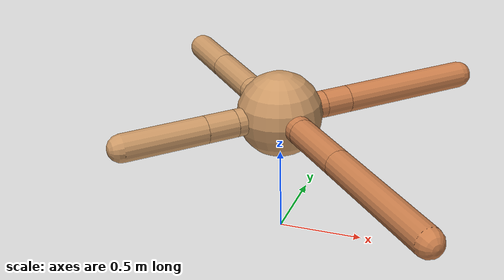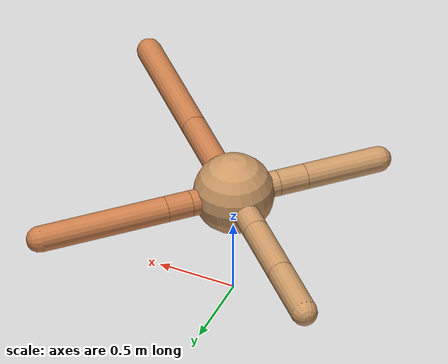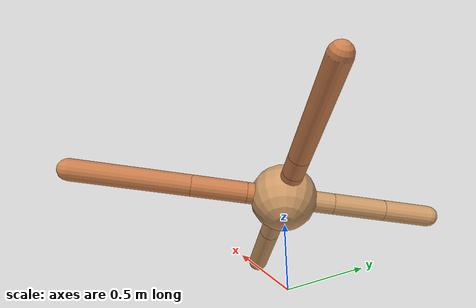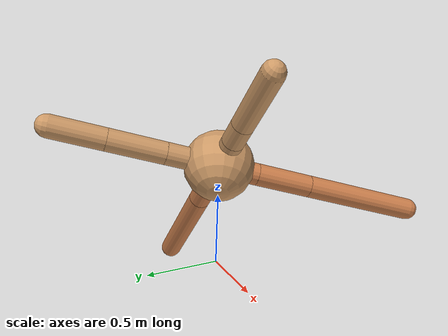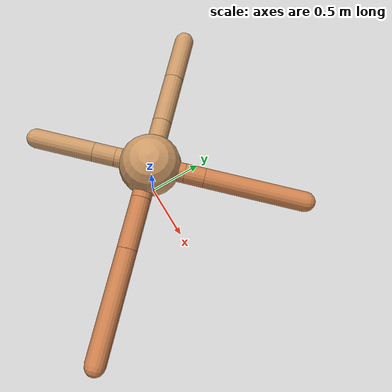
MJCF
<mujoco model="ant">
  <compiler angle="degree" coordinate="local" inertiafromgeom="true" />
  <option integrator="RK4" timestep="0.01" />
  <custom>
    <numeric data="0.0 0.0 0.55 1.0 0.0 0.0 0.0 0.0 1.0 0.0 -1.0 0.0 -1.0 0.0 1.0" name="init_qpos" />
  </custom>
  <default>
    <joint armature="1" damping="1" limited="true" />
    <geom conaffinity="0" condim="3" density="5.0" friction="1.5 0.1 0.1" margin="0.01" rgba="0.8 0.6 0.4 1" />
  </default>
  <worldbody>
    <body name="torso" pos="0 0 0.75">
      <geom name="torso_geom" pos="0 0 0" size="0.25" type="sphere" />

      <body name="front_left_leg" pos="0 0 0">
        <geom fromto="0.0 0.0 0.0 0.2 0.2 0.0" name="aux_1_geom" size="0.08" type="capsule" rgba=".8 .5 .3 1" />
        <body name="aux_1" pos="0.2 0.2 0.0">
          <joint axis="0 0 1" name="hip_1" pos="0.0 0.0 0.0" range="-40 40" type="hinge" />
          <geom fromto="0.0 0.0 0.0 0.11189490476113202 0.11189490476113202 0.0" name="left_leg_geom" size="0.08" type="capsule" rgba=".8 .5 .3 1" />
          <body pos="0.11189490476113202 0.11189490476113202 0.0" name="front_left_foot">
            <joint axis="-1 1 0" name="ankle_1" pos="0.0 0.0 0.0" range="30 100" type="hinge" />
            <geom fromto="0.0 0.0 0.0 0.5655335662081185 0.5655335662081185 0.0" name="left_ankle_geom" size="0.08" type="capsule" rgba=".8 .5 .3 1" />
          </body>
        </body>
      </body>
      <body name="front_right_leg" pos="0 0 0">
        <geom fromto="0.0 0.0 0.0 -0.2695209801019693 0.2695209801019693 0.0" name="aux_2_geom" size="0.08" type="capsule" />
        <body name="aux_2" pos="-0.2695209801019693 0.2695209801019693 0.0">
          <joint axis="0 0 1" name="hip_2" pos="0.0 0.0 0.0" range="-40 40" type="hinge" />
          <geom fromto="0.0 0.0 0.0 -0.2867629648369982 0.2867629648369982 0.0" name="right_leg_geom" size="0.08" type="capsule" />
          <body pos="-0.2867629648369982 0.2867629648369982 0.0" name="front_right_foot">
            <joint axis="1 1 0" name="ankle_2" pos="0.0 0.0 0.0" range="-100 -30" type="hinge" />
            <geom fromto="0.0 0.0 0.0 -0.26610535913706207 0.26610535913706207 0.0" name="right_ankle_geom" size="0.08" type="capsule" />
          </body>
        </body>
      </body>
      <body name="left_back_leg" pos="0 0 0">
        <geom fromto="0.0 0.0 0.0 -0.2 -0.2 0.0" name="aux_3_geom" size="0.08" type="capsule" />
        <body name="aux_3" pos="-0.2 -0.2 0.0">
          <joint axis="0 0 1" name="hip_3" pos="0.0 0.0 0.0" range="-40 40" type="hinge" />
          <geom fromto="0.0 0.0 0.0 -0.1276148273314661 -0.1276148273314661 0.0" name="back_leg_geom" size="0.08" type="capsule" />
          <body pos="-0.1276148273314661 -0.1276148273314661 0.0" name="left_back_foot">
            <joint axis="-1 1 0" name="ankle_3" pos="0.0 0.0 0.0" range="-100 -30" type="hinge" />
            <geom fromto="0.0 0.0 0.0 -0.34411777813825495 -0.34411777813825495 0.0" name="third_ankle_geom" size="0.08" type="capsule" />
          </body>
        </body>
      </body>
      <body name="right_back_leg" pos="0 0 0">
        <geom fromto="0.0 0.0 0.0 0.2 -0.2 0.0" name="aux_4_geom" size="0.08" type="capsule" rgba=".8 .5 .3 1" />
        <body name="aux_4" pos="0.2 -0.2 0.0">
          <joint axis="0 0 1" name="hip_4" pos="0.0 0.0 0.0" range="-40 40" type="hinge" />
          <geom fromto="0.0 0.0 0.0 0.2881756862944371 -0.2881756862944371 0.0" name="rightback_leg_geom" size="0.08" type="capsule" rgba=".8 .5 .3 1" />
          <body pos="0.2881756862944371 -0.2881756862944371 0.0" name="right_back_foot">
            <joint axis="1 1 0" name="ankle_4" pos="0.0 0.0 0.0" range="30 100" type="hinge" />
            <geom fromto="0.0 0.0 0.0 0.5946911143266643 -0.5946911143266643 0.0" name="fourth_ankle_geom" size="0.08" type="capsule" rgba=".8 .5 .3 1" />
          </body>
        </body>
      </body>
    </body>
  </worldbody>
  <actuator>
    <motor ctrllimited="true" ctrlrange="-1.0 1.0" joint="hip_4" gear="150" />
    <motor ctrllimited="true" ctrlrange="-1.0 1.0" joint="ankle_4" gear="150" />
    <motor ctrllimited="true" ctrlrange="-1.0 1.0" joint="hip_1" gear="150" />
    <motor ctrllimited="true" ctrlrange="-1.0 1.0" joint="ankle_1" gear="150" />
    <motor ctrllimited="true" ctrlrange="-1.0 1.0" joint="hip_2" gear="150" />
    <motor ctrllimited="true" ctrlrange="-1.0 1.0" joint="ankle_2" gear="150" />
    <motor ctrllimited="true" ctrlrange="-1.0 1.0" joint="hip_3" gear="150" />
    <motor ctrllimited="true" ctrlrange="-1.0 1.0" joint="ankle_3" gear="150" />
  </actuator>
</mujoco>
